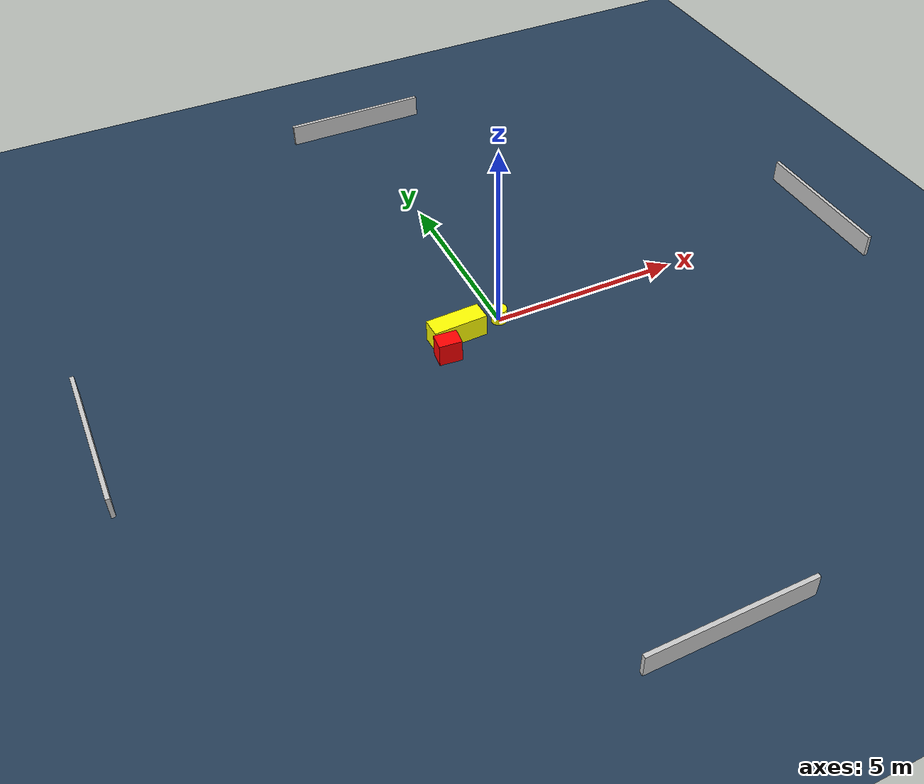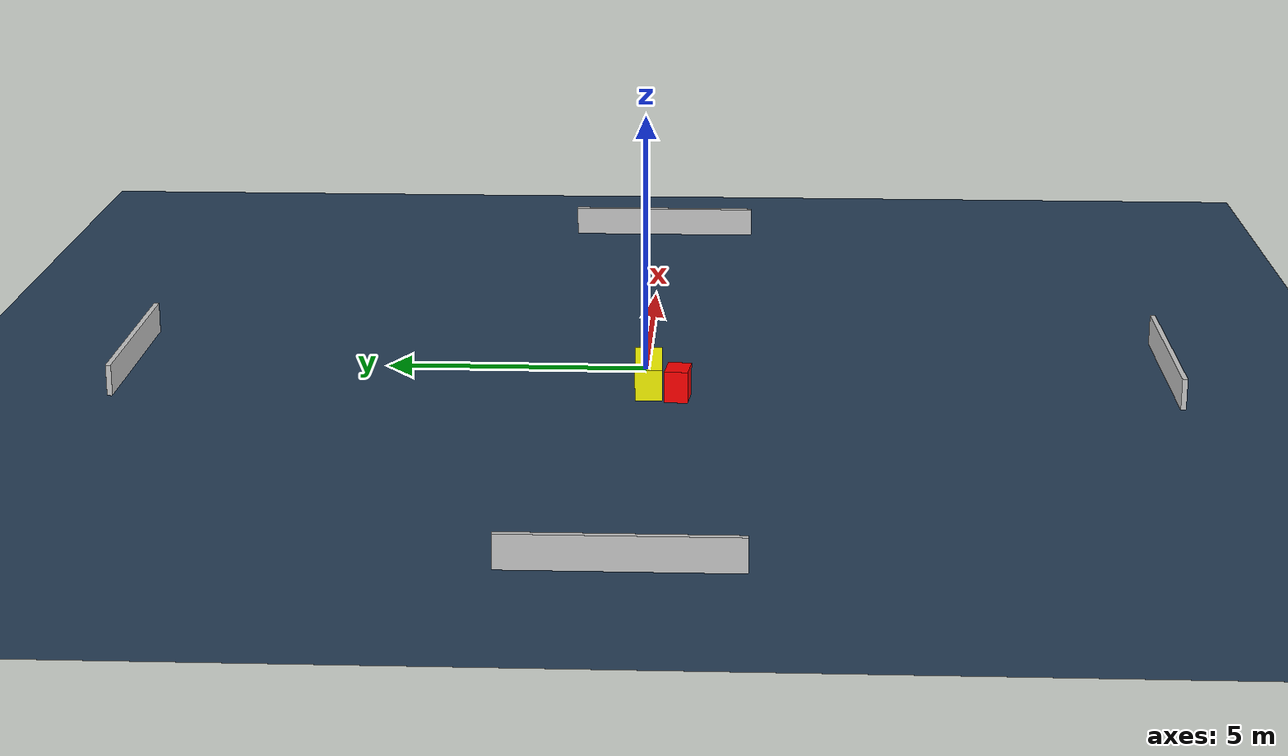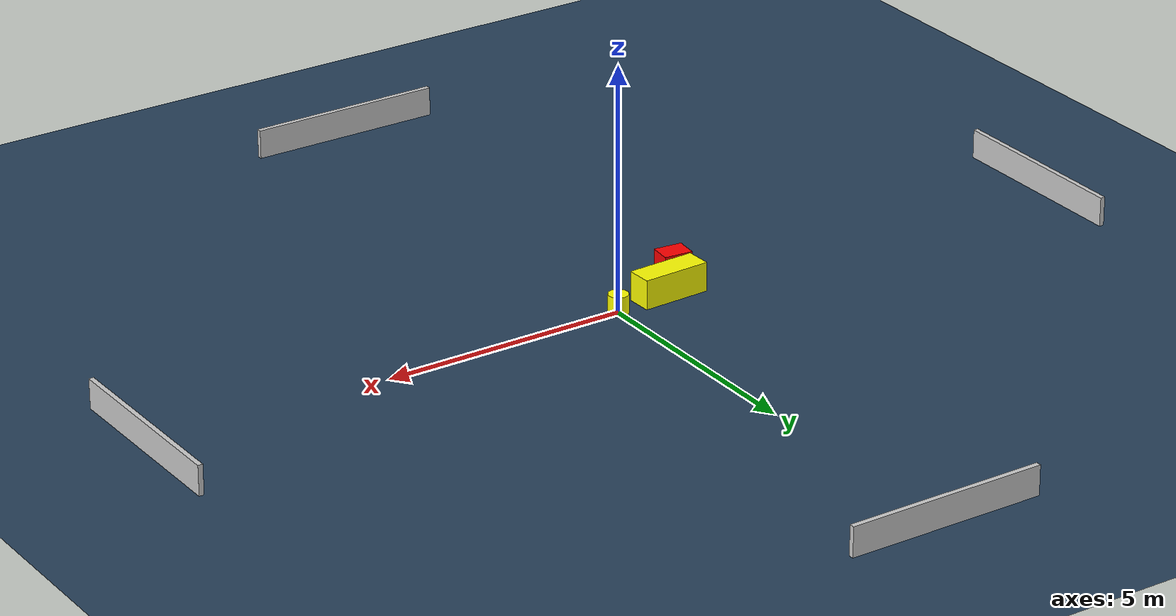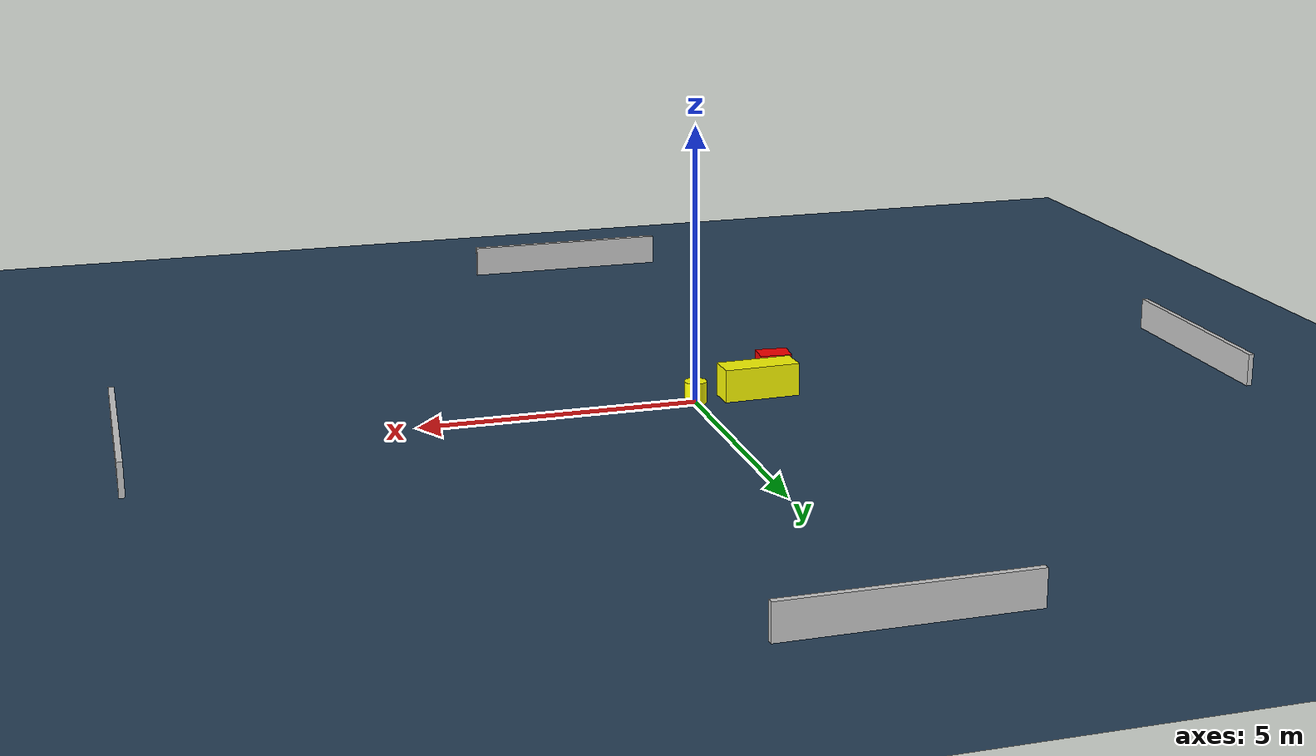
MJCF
<?xml version="1.0" ?>
<mujoco model="generated_environment">
  <option timestep="0.01" integrator="RK4" cone="elliptic"/>
  <default>
    <geom density="1"/>
  </default>
  <asset>
    <texture builtin="gradient" height="3072" name="skybox" rgb1="0.3 0.5 0.7" rgb2="0 0 0" type="skybox" width="512"/>
    <texture builtin="checker" height="300" name="groundplane" rgb1="0.2 0.3 0.4" rgb2="0.1 0.2 0.3" type="2d" width="300"/>
    <material name="groundplane" reflectance="0.2" texrepeat="5 5" texture="groundplane"/>
  </asset>
  <worldbody>
    <light dir="0 0 -1" directional="true" pos="0 0 1.5"/>
    <geom condim="3" friction="0.5 0.005 0.001" material="groundplane" name="floor" pos="0 0 0" size="0 0 0.05" type="plane"/>
    <body name="walls">
      <geom name="wall_1" condim="4" pos="-10.0 0.0 0.3" rgba="0.800000011920929 0.800000011920929 0.800000011920929 1.0" size="0.05 2.0 0.3" type="box"/>
      <geom name="wall_2" condim="4" pos="10.0 0.0 0.3" rgba="0.800000011920929 0.800000011920929 0.800000011920929 1.0" size="0.05 2.0 0.3" type="box"/>
      <geom name="wall_3" condim="4" pos="0.0 -10.0 0.3" rgba="0.800000011920929 0.800000011920929 0.800000011920929 1.0" size="2.0 0.05 0.3" type="box"/>
      <geom name="wall_4" condim="4" pos="0.0 10.0 0.3" rgba="0.800000011920929 0.800000011920929 0.800000011920929 1.0" size="2.0 0.05 0.3" type="box"/>
    </body>
    <body name="robot">
      <joint name="joint_x" type="slide" pos="0 0 0" axis="1 0 0"/>
      <joint name="joint_y" type="slide" pos="0 0 0" axis="0 1 0"/>
      <geom name="robot" type="cylinder" pos="0.0 0.0 0.2" size="0.2 0.2 0.0" mass="5.0" friction="1.0 0.005 0.0001" condim="4" rgba="1.0 1.0 0.0 1.0"/>
    </body>
    <body name="obstacle_1_movable">
      <geom name="obstacle_1_movable" condim="4" pos="-1.204540526432905 -0.09511592910925377 0.3" euler="0 0 182.0389816847627" friction="0.0 0.005 0.001" rgba="1.0 1.0 0.0 1.0" size="0.7001392033121836 0.2589541130321849 0.3" type="box" mass="0.1"/>
      <joint type="free"/>
    </body>
    <body name="obstacle_2_static">
      <geom name="obstacle_2_static" condim="4" pos="-1.691234402179434 -0.6584472209936967 0.3" euler="0 0 264.4956476071265" friction="0.0 0.005 0.001" rgba="1.0 0.0 0.0 1.0" size="0.21938482668492743 0.29151787444402355 0.3" type="box"/>
    </body>
  </worldbody>
  <actuator>
    <motor name="actuator_x" joint="joint_x" gear="1" ctrlrange="-1 1"/>
    <motor name="actuator_y" joint="joint_y" gear="1" ctrlrange="-1 1"/>
  </actuator>
</mujoco>
